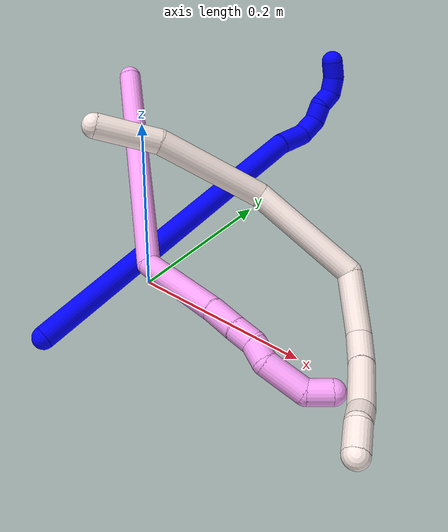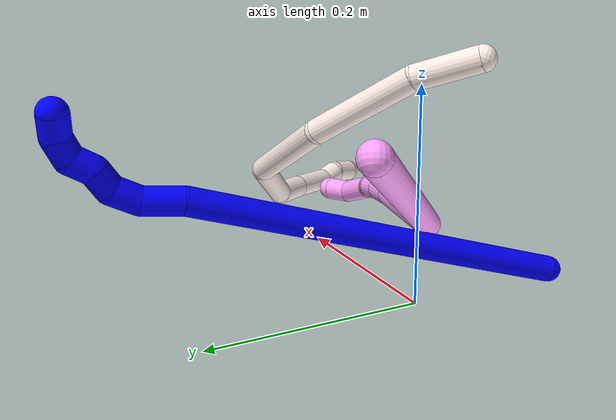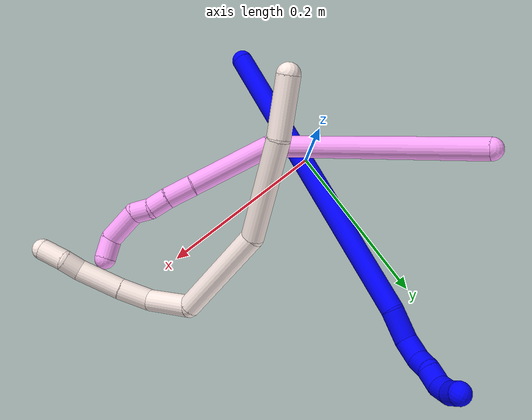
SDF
<sdf version="1.7">
 <world name="default">
  <model name="photoneo_s_sensor">
   <static>1</static>
   <pose>0 0 2 1.57079 1.57079 3.14159</pose>
   <link name="link">
    <inertial><mass>0.1</mass></inertial>
    <sensor name="sensor" type="depth">
     <update_rate>30</update_rate>
     <camera>
      <horizontal_fov>1.22</horizontal_fov>
      <image><width>1920</width><height>1200</height><format>B8G8R8</format></image>
      <clip><near>0.1</near><far>4</far></clip>
      <depth_camera><output>points</output></depth_camera>
     </camera>
     <plugin name="camera_plugin" filename="libgazebo_ros_depth_camera.so">
      <baseline>0.2</baseline>
      <alwaysOn>1</alwaysOn>
      <updateRate>0.0</updateRate>
      <cameraName>camera_ir</cameraName>
      <imageTopicName>/camera/color/image_raw</imageTopicName>
      <cameraInfoTopicName>/camera/color/camera_info</cameraInfoTopicName>
      <depthImageTopicName>/camera/depth/image_raw</depthImageTopicName>
      <depthImageCameraInfoTopicName>/camera/depth/camera_info</depthImageCameraInfoTopicName>
      <pointCloudTopicName>/camera/depth/points</pointCloudTopicName>
      <frameName>fr_optical</frameName>
      <pointCloudCutoff>0.1</pointCloudCutoff>
      <pointCloudCutoffMax>2.0</pointCloudCutoffMax>
      <distortionK1>0</distortionK1>
      <distortionK2>0</distortionK2>
      <distortionK3>0</distortionK3>
      <distortionT1>0</distortionT1>
      <distortionT2>0</distortionT2>
      <CxPrime>0</CxPrime>
      <Cx>0</Cx>
      <Cy>0</Cy>
      <focalLength>0</focalLength>
      <hackBaseline>0</hackBaseline>
     </plugin>
    </sensor>
   </link>
  </model>
  <model name="1">
   <static>0</static>
   <link name="1">
    <collision name="collision-cylinder-e_1_1_4">
     <pose>0.023298 0.153232 0.091467 -1.03265 0.129821 -0.073769</pose>
     <geometry><cylinder><radius>0.0125</radius><length>0.35994</length></cylinder></geometry>
     <surface>
      <friction><ode><mu>1.16</mu><mu2>1.16</mu2><slip1>0</slip1><slip2>0</slip2></ode></friction>
      <contact><ode><kp>1e+06</kp><kd>1</kd><max_vel>0</max_vel><min_depth>0.001</min_depth></ode></contact>
     </surface>
    </collision>
    <visual name="visual-cylinder-e_1_1_4">
     <pose>0.023298 0.153232 0.091467 -1.03265 0.129821 -0.073769</pose>
     <geometry><cylinder><radius>0.0125</radius><length>0.35994</length></cylinder></geometry>
     <material><ambient>0 0 1 1</ambient></material>
    </visual>
    <collision name="collision-cylinder-e_2_4_5">
     <pose>0.051639 0.319088 0.193872 -0.856778 0.29319 -0.134655</pose>
     <geometry><cylinder><radius>0.0125</radius><length>0.034896</length></cylinder></geometry>
     <surface>
      <friction><ode><mu>1.16</mu><mu2>1.16</mu2><slip1>0</slip1><slip2>0</slip2></ode></friction>
      <contact><ode><kp>1e+06</kp><kd>1</kd><max_vel>0</max_vel><min_depth>0.001</min_depth></ode></contact>
     </surface>
    </collision>
    <visual name="visual-cylinder-e_2_4_5">
     <pose>0.051639 0.319088 0.193872 -0.856778 0.29319 -0.134655</pose>
     <geometry><cylinder><radius>0.0125</radius><length>0.034896</length></cylinder></geometry>
     <material><ambient>0 0 1 1</ambient></material>
    </visual>
    <collision name="collision-cylinder-e_3_5_6">
     <pose>0.056255 0.342826 0.210297 -1.11231 -0.034473 0.02143</pose>
     <geometry><cylinder><radius>0.0125</radius><length>0.024803</length></cylinder></geometry>
     <surface>
      <friction><ode><mu>1.16</mu><mu2>1.16</mu2><slip1>0</slip1><slip2>0</slip2></ode></friction>
      <contact><ode><kp>1e+06</kp><kd>1</kd><max_vel>0</max_vel><min_depth>0.001</min_depth></ode></contact>
     </surface>
    </collision>
    <visual name="visual-cylinder-e_3_5_6">
     <pose>0.056255 0.342826 0.210297 -1.11231 -0.034473 0.02143</pose>
     <geometry><cylinder><radius>0.0125</radius><length>0.024803</length></cylinder></geometry>
     <material><ambient>0 0 1 1</ambient></material>
    </visual>
    <collision name="collision-cylinder-e_4_6_7">
     <pose>0.051113 0.36285 0.217079 -1.42626 -0.4823 0.419214</pose>
     <geometry><cylinder><radius>0.0125</radius><length>0.020328</length></cylinder></geometry>
     <surface>
      <friction><ode><mu>1.16</mu><mu2>1.16</mu2><slip1>0</slip1><slip2>0</slip2></ode></friction>
      <contact><ode><kp>1e+06</kp><kd>1</kd><max_vel>0</max_vel><min_depth>0.001</min_depth></ode></contact>
     </surface>
    </collision>
    <visual name="visual-cylinder-e_4_6_7">
     <pose>0.051113 0.36285 0.217079 -1.42626 -0.4823 0.419214</pose>
     <geometry><cylinder><radius>0.0125</radius><length>0.020328</length></cylinder></geometry>
     <material><ambient>0 0 1 1</ambient></material>
    </visual>
    <collision name="collision-cylinder-e_5_7_8">
     <pose>0.045478 0.380734 0.222697 -1.12203 -0.092137 0.05792</pose>
     <geometry><cylinder><radius>0.0125</radius><length>0.020003</length></cylinder></geometry>
     <surface>
      <friction><ode><mu>1.16</mu><mu2>1.16</mu2><slip1>0</slip1><slip2>0</slip2></ode></friction>
      <contact><ode><kp>1e+06</kp><kd>1</kd><max_vel>0</max_vel><min_depth>0.001</min_depth></ode></contact>
     </surface>
    </collision>
    <visual name="visual-cylinder-e_5_7_8">
     <pose>0.045478 0.380734 0.222697 -1.12203 -0.092137 0.05792</pose>
     <geometry><cylinder><radius>0.0125</radius><length>0.020003</length></cylinder></geometry>
     <material><ambient>0 0 1 1</ambient></material>
    </visual>
    <collision name="collision-cylinder-e_6_8_9">
     <pose>0.03912 0.398105 0.226719 -1.60634 -0.574336 0.59394</pose>
     <geometry><cylinder><radius>0.0125</radius><length>0.020018</length></cylinder></geometry>
     <surface>
      <friction><ode><mu>1.16</mu><mu2>1.16</mu2><slip1>0</slip1><slip2>0</slip2></ode></friction>
      <contact><ode><kp>1e+06</kp><kd>1</kd><max_vel>0</max_vel><min_depth>0.001</min_depth></ode></contact>
     </surface>
    </collision>
    <visual name="visual-cylinder-e_6_8_9">
     <pose>0.03912 0.398105 0.226719 -1.60634 -0.574336 0.59394</pose>
     <geometry><cylinder><radius>0.0125</radius><length>0.020018</length></cylinder></geometry>
     <material><ambient>0 0 1 1</ambient></material>
    </visual>
    <collision name="collision-cylinder-e_7_9_2">
     <pose>0.026614 0.412855 0.22329 -2.02862 -0.784482 1.17371</pose>
     <geometry><cylinder><radius>0.0125</radius><length>0.020013</length></cylinder></geometry>
     <surface>
      <friction><ode><mu>1.16</mu><mu2>1.16</mu2><slip1>0</slip1><slip2>0</slip2></ode></friction>
      <contact><ode><kp>1e+06</kp><kd>1</kd><max_vel>0</max_vel><min_depth>0.001</min_depth></ode></contact>
     </surface>
    </collision>
    <visual name="visual-cylinder-e_7_9_2">
     <pose>0.026614 0.412855 0.22329 -2.02862 -0.784482 1.17371</pose>
     <geometry><cylinder><radius>0.0125</radius><length>0.020013</length></cylinder></geometry>
     <material><ambient>0 0 1 1</ambient></material>
    </visual>
    <collision name="collision-sphere-2">
     <pose>0.019545 0.419208 0.22016 0 -0 0</pose>
     <geometry><sphere><radius>0.0125</radius></sphere></geometry>
     <surface>
      <friction><ode><mu>1.16</mu><mu2>1.16</mu2><slip1>0</slip1><slip2>0</slip2></ode></friction>
      <contact><ode><kp>1e+06</kp><kd>1</kd><max_vel>0</max_vel><min_depth>0.001</min_depth></ode></contact>
     </surface>
    </collision>
    <visual name="visual-sphere-2">
     <pose>0.019545 0.419208 0.22016 0 -0 0</pose>
     <geometry><sphere><radius>0.0125</radius></sphere></geometry>
     <material><ambient>0 0 1 1</ambient></material>
    </visual>
    <collision name="collision-sphere-9">
     <pose>0.033683 0.406502 0.226421 0 -0 0</pose>
     <geometry><sphere><radius>0.0125</radius></sphere></geometry>
     <surface>
      <friction><ode><mu>1.16</mu><mu2>1.16</mu2><slip1>0</slip1><slip2>0</slip2></ode></friction>
      <contact><ode><kp>1e+06</kp><kd>1</kd><max_vel>0</max_vel><min_depth>0.001</min_depth></ode></contact>
     </surface>
    </collision>
    <visual name="visual-sphere-9">
     <pose>0.033683 0.406502 0.226421 0 -0 0</pose>
     <geometry><sphere><radius>0.0125</radius></sphere></geometry>
     <material><ambient>0 0 1 1</ambient></material>
    </visual>
    <collision name="collision-sphere-4">
     <pose>0.046597 0.306465 0.182934 0 -0 0</pose>
     <geometry><sphere><radius>0.0125</radius></sphere></geometry>
     <surface>
      <friction><ode><mu>1.16</mu><mu2>1.16</mu2><slip1>0</slip1><slip2>0</slip2></ode></friction>
      <contact><ode><kp>1e+06</kp><kd>1</kd><max_vel>0</max_vel><min_depth>0.001</min_depth></ode></contact>
     </surface>
    </collision>
    <visual name="visual-sphere-4">
     <pose>0.046597 0.306465 0.182934 0 -0 0</pose>
     <geometry><sphere><radius>0.0125</radius></sphere></geometry>
     <material><ambient>0 0 1 1</ambient></material>
    </visual>
    <collision name="collision-sphere-1">
     <geometry><sphere><radius>0.0125</radius></sphere></geometry>
     <surface>
      <friction><ode><mu>1.16</mu><mu2>1.16</mu2><slip1>0</slip1><slip2>0</slip2></ode></friction>
      <contact><ode><kp>1e+06</kp><kd>1</kd><max_vel>0</max_vel><min_depth>0.001</min_depth></ode></contact>
     </surface>
    </collision>
    <visual name="visual-sphere-1">
     <geometry><sphere><radius>0.0125</radius></sphere></geometry>
     <material><ambient>0 0 1 1</ambient></material>
    </visual>
    <collision name="collision-sphere-8">
     <pose>0.044558 0.389707 0.227018 0 -0 0</pose>
     <geometry><sphere><radius>0.0125</radius></sphere></geometry>
     <surface>
      <friction><ode><mu>1.16</mu><mu2>1.16</mu2><slip1>0</slip1><slip2>0</slip2></ode></friction>
      <contact><ode><kp>1e+06</kp><kd>1</kd><max_vel>0</max_vel><min_depth>0.001</min_depth></ode></contact>
     </surface>
    </collision>
    <visual name="visual-sphere-8">
     <pose>0.044558 0.389707 0.227018 0 -0 0</pose>
     <geometry><sphere><radius>0.0125</radius></sphere></geometry>
     <material><ambient>0 0 1 1</ambient></material>
    </visual>
    <collision name="collision-sphere-5">
     <pose>0.056682 0.331712 0.204811 0 -0 0</pose>
     <geometry><sphere><radius>0.0125</radius></sphere></geometry>
     <surface>
      <friction><ode><mu>1.16</mu><mu2>1.16</mu2><slip1>0</slip1><slip2>0</slip2></ode></friction>
      <contact><ode><kp>1e+06</kp><kd>1</kd><max_vel>0</max_vel><min_depth>0.001</min_depth></ode></contact>
     </surface>
    </collision>
    <visual name="visual-sphere-5">
     <pose>0.056682 0.331712 0.204811 0 -0 0</pose>
     <geometry><sphere><radius>0.0125</radius></sphere></geometry>
     <material><ambient>0 0 1 1</ambient></material>
    </visual>
    <collision name="collision-sphere-6">
     <pose>0.055827 0.35394 0.215782 0 -0 0</pose>
     <geometry><sphere><radius>0.0125</radius></sphere></geometry>
     <surface>
      <friction><ode><mu>1.16</mu><mu2>1.16</mu2><slip1>0</slip1><slip2>0</slip2></ode></friction>
      <contact><ode><kp>1e+06</kp><kd>1</kd><max_vel>0</max_vel><min_depth>0.001</min_depth></ode></contact>
     </surface>
    </collision>
    <visual name="visual-sphere-6">
     <pose>0.055827 0.35394 0.215782 0 -0 0</pose>
     <geometry><sphere><radius>0.0125</radius></sphere></geometry>
     <material><ambient>0 0 1 1</ambient></material>
    </visual>
    <collision name="collision-sphere-7">
     <pose>0.046398 0.371761 0.218376 0 -0 0</pose>
     <geometry><sphere><radius>0.0125</radius></sphere></geometry>
     <surface>
      <friction><ode><mu>1.16</mu><mu2>1.16</mu2><slip1>0</slip1><slip2>0</slip2></ode></friction>
      <contact><ode><kp>1e+06</kp><kd>1</kd><max_vel>0</max_vel><min_depth>0.001</min_depth></ode></contact>
     </surface>
    </collision>
    <visual name="visual-sphere-7">
     <pose>0.046398 0.371761 0.218376 0 -0 0</pose>
     <geometry><sphere><radius>0.0125</radius></sphere></geometry>
     <material><ambient>0 0 1 1</ambient></material>
    </visual>
    <inertial>
     <pose>0.029695 0.212031 0.125557 0 -0 0</pose>
     <mass>0.5</mass>
     <inertia>
      <ixx>0.003586</ixx>
      <ixy>0</ixy>
      <ixz>0</ixz>
      <iyy>0.001781</iyy>
      <iyz>0</iyz>
      <izz>-0.003817</izz>
     </inertia>
    </inertial>
   </link>
   <pose>-0.01263 -0.145416 0.011445 1.7963 0.994048 2.20487</pose>
  </model>
  <model name="4">
   <static>0</static>
   <link name="4">
    <collision name="collision-cylinder-e_1_1_4">
     <pose>0.093054 -0.086109 0.011975 1.43261 0.819368 0.722869</pose>
     <geometry><cylinder><radius>0.0125</radius><length>0.254693</length></cylinder></geometry>
     <surface>
      <friction><ode><mu>1.16</mu><mu2>1.16</mu2><slip1>0</slip1><slip2>0</slip2></ode></friction>
      <contact><ode><kp>1e+06</kp><kd>1</kd><max_vel>0</max_vel><min_depth>0.001</min_depth></ode></contact>
     </surface>
    </collision>
    <visual name="visual-cylinder-e_1_1_4">
     <pose>0.093054 -0.086109 0.011975 1.43261 0.819368 0.722869</pose>
     <geometry><cylinder><radius>0.0125</radius><length>0.254693</length></cylinder></geometry>
     <material><ambient>1 0.65098 0.996078 1</ambient></material>
    </visual>
    <collision name="collision-cylinder-e_2_4_5">
     <pose>0.227682 -0.177583 0.050871 0.196751 0.987242 0.106105</pose>
     <geometry><cylinder><radius>0.0125</radius><length>0.099638</length></cylinder></geometry>
     <surface>
      <friction><ode><mu>1.16</mu><mu2>1.16</mu2><slip1>0</slip1><slip2>0</slip2></ode></friction>
      <contact><ode><kp>1e+06</kp><kd>1</kd><max_vel>0</max_vel><min_depth>0.001</min_depth></ode></contact>
     </surface>
    </collision>
    <visual name="visual-cylinder-e_2_4_5">
     <pose>0.227682 -0.177583 0.050871 0.196751 0.987242 0.106105</pose>
     <geometry><cylinder><radius>0.0125</radius><length>0.099638</length></cylinder></geometry>
     <material><ambient>1 0.65098 0.996078 1</ambient></material>
    </visual>
    <collision name="collision-cylinder-e_3_5_6">
     <pose>0.283322 -0.185376 0.085144 0.318862 1.06758 0.189497</pose>
     <geometry><cylinder><radius>0.0125</radius><length>0.032111</length></cylinder></geometry>
     <surface>
      <friction><ode><mu>1.16</mu><mu2>1.16</mu2><slip1>0</slip1><slip2>0</slip2></ode></friction>
      <contact><ode><kp>1e+06</kp><kd>1</kd><max_vel>0</max_vel><min_depth>0.001</min_depth></ode></contact>
     </surface>
    </collision>
    <visual name="visual-cylinder-e_3_5_6">
     <pose>0.283322 -0.185376 0.085144 0.318862 1.06758 0.189497</pose>
     <geometry><cylinder><radius>0.0125</radius><length>0.032111</length></cylinder></geometry>
     <material><ambient>1 0.65098 0.996078 1</ambient></material>
    </visual>
    <collision name="collision-cylinder-e_4_6_7">
     <pose>0.307924 -0.188821 0.097094 0.217675 1.15052 0.141468</pose>
     <geometry><cylinder><radius>0.0125</radius><length>0.023084</length></cylinder></geometry>
     <surface>
      <friction><ode><mu>1.16</mu><mu2>1.16</mu2><slip1>0</slip1><slip2>0</slip2></ode></friction>
      <contact><ode><kp>1e+06</kp><kd>1</kd><max_vel>0</max_vel><min_depth>0.001</min_depth></ode></contact>
     </surface>
    </collision>
    <visual name="visual-cylinder-e_4_6_7">
     <pose>0.307924 -0.188821 0.097094 0.217675 1.15052 0.141468</pose>
     <geometry><cylinder><radius>0.0125</radius><length>0.023084</length></cylinder></geometry>
     <material><ambient>1 0.65098 0.996078 1</ambient></material>
    </visual>
    <collision name="collision-cylinder-e_5_7_8">
     <pose>0.328001 -0.194488 0.104576 1.01579 1.04998 0.62373</pose>
     <geometry><cylinder><radius>0.0125</radius><length>0.021994</length></cylinder></geometry>
     <surface>
      <friction><ode><mu>1.16</mu><mu2>1.16</mu2><slip1>0</slip1><slip2>0</slip2></ode></friction>
      <contact><ode><kp>1e+06</kp><kd>1</kd><max_vel>0</max_vel><min_depth>0.001</min_depth></ode></contact>
     </surface>
    </collision>
    <visual name="visual-cylinder-e_5_7_8">
     <pose>0.328001 -0.194488 0.104576 1.01579 1.04998 0.62373</pose>
     <geometry><cylinder><radius>0.0125</radius><length>0.021994</length></cylinder></geometry>
     <material><ambient>1 0.65098 0.996078 1</ambient></material>
    </visual>
    <collision name="collision-cylinder-e_6_8_9">
     <pose>0.359156 -0.197584 0.110367 -0.491111 1.41942 -0.42409</pose>
     <geometry><cylinder><radius>0.0125</radius><length>0.043732</length></cylinder></geometry>
     <surface>
      <friction><ode><mu>1.16</mu><mu2>1.16</mu2><slip1>0</slip1><slip2>0</slip2></ode></friction>
      <contact><ode><kp>1e+06</kp><kd>1</kd><max_vel>0</max_vel><min_depth>0.001</min_depth></ode></contact>
     </surface>
    </collision>
    <visual name="visual-cylinder-e_6_8_9">
     <pose>0.359156 -0.197584 0.110367 -0.491111 1.41942 -0.42409</pose>
     <geometry><cylinder><radius>0.0125</radius><length>0.043732</length></cylinder></geometry>
     <material><ambient>1 0.65098 0.996078 1</ambient></material>
    </visual>
    <collision name="collision-cylinder-e_7_9_2">
     <pose>0.389805 -0.188259 0.116615 -1.16477 0.8183 -0.556342</pose>
     <geometry><cylinder><radius>0.0125</radius><length>0.024748</length></cylinder></geometry>
     <surface>
      <friction><ode><mu>1.16</mu><mu2>1.16</mu2><slip1>0</slip1><slip2>0</slip2></ode></friction>
      <contact><ode><kp>1e+06</kp><kd>1</kd><max_vel>0</max_vel><min_depth>0.001</min_depth></ode></contact>
     </surface>
    </collision>
    <visual name="visual-cylinder-e_7_9_2">
     <pose>0.389805 -0.188259 0.116615 -1.16477 0.8183 -0.556342</pose>
     <geometry><cylinder><radius>0.0125</radius><length>0.024748</length></cylinder></geometry>
     <material><ambient>1 0.65098 0.996078 1</ambient></material>
    </visual>
    <collision name="collision-sphere-2">
     <pose>0.398838 -0.180489 0.119955 0 -0 0</pose>
     <geometry><sphere><radius>0.0125</radius></sphere></geometry>
     <surface>
      <friction><ode><mu>1.16</mu><mu2>1.16</mu2><slip1>0</slip1><slip2>0</slip2></ode></friction>
      <contact><ode><kp>1e+06</kp><kd>1</kd><max_vel>0</max_vel><min_depth>0.001</min_depth></ode></contact>
     </surface>
    </collision>
    <visual name="visual-sphere-2">
     <pose>0.398838 -0.180489 0.119955 0 -0 0</pose>
     <geometry><sphere><radius>0.0125</radius></sphere></geometry>
     <material><ambient>1 0.65098 0.996078 1</ambient></material>
    </visual>
    <collision name="collision-sphere-9">
     <pose>0.380772 -0.196029 0.113275 0 -0 0</pose>
     <geometry><sphere><radius>0.0125</radius></sphere></geometry>
     <surface>
      <friction><ode><mu>1.16</mu><mu2>1.16</mu2><slip1>0</slip1><slip2>0</slip2></ode></friction>
      <contact><ode><kp>1e+06</kp><kd>1</kd><max_vel>0</max_vel><min_depth>0.001</min_depth></ode></contact>
     </surface>
    </collision>
    <visual name="visual-sphere-9">
     <pose>0.380772 -0.196029 0.113275 0 -0 0</pose>
     <geometry><sphere><radius>0.0125</radius></sphere></geometry>
     <material><ambient>1 0.65098 0.996078 1</ambient></material>
    </visual>
    <collision name="collision-sphere-4">
     <pose>0.186108 -0.172217 0.023951 0 -0 0</pose>
     <geometry><sphere><radius>0.0125</radius></sphere></geometry>
     <surface>
      <friction><ode><mu>1.16</mu><mu2>1.16</mu2><slip1>0</slip1><slip2>0</slip2></ode></friction>
      <contact><ode><kp>1e+06</kp><kd>1</kd><max_vel>0</max_vel><min_depth>0.001</min_depth></ode></contact>
     </surface>
    </collision>
    <visual name="visual-sphere-4">
     <pose>0.186108 -0.172217 0.023951 0 -0 0</pose>
     <geometry><sphere><radius>0.0125</radius></sphere></geometry>
     <material><ambient>1 0.65098 0.996078 1</ambient></material>
    </visual>
    <collision name="collision-sphere-1">
     <geometry><sphere><radius>0.0125</radius></sphere></geometry>
     <surface>
      <friction><ode><mu>1.16</mu><mu2>1.16</mu2><slip1>0</slip1><slip2>0</slip2></ode></friction>
      <contact><ode><kp>1e+06</kp><kd>1</kd><max_vel>0</max_vel><min_depth>0.001</min_depth></ode></contact>
     </surface>
    </collision>
    <visual name="visual-sphere-1">
     <geometry><sphere><radius>0.0125</radius></sphere></geometry>
     <material><ambient>1 0.65098 0.996078 1</ambient></material>
    </visual>
    <collision name="collision-sphere-8">
     <pose>0.33754 -0.199139 0.107459 0 -0 0</pose>
     <geometry><sphere><radius>0.0125</radius></sphere></geometry>
     <surface>
      <friction><ode><mu>1.16</mu><mu2>1.16</mu2><slip1>0</slip1><slip2>0</slip2></ode></friction>
      <contact><ode><kp>1e+06</kp><kd>1</kd><max_vel>0</max_vel><min_depth>0.001</min_depth></ode></contact>
     </surface>
    </collision>
    <visual name="visual-sphere-8">
     <pose>0.33754 -0.199139 0.107459 0 -0 0</pose>
     <geometry><sphere><radius>0.0125</radius></sphere></geometry>
     <material><ambient>1 0.65098 0.996078 1</ambient></material>
    </visual>
    <collision name="collision-sphere-5">
     <pose>0.269257 -0.182949 0.077792 0 -0 0</pose>
     <geometry><sphere><radius>0.0125</radius></sphere></geometry>
     <surface>
      <friction><ode><mu>1.16</mu><mu2>1.16</mu2><slip1>0</slip1><slip2>0</slip2></ode></friction>
      <contact><ode><kp>1e+06</kp><kd>1</kd><max_vel>0</max_vel><min_depth>0.001</min_depth></ode></contact>
     </surface>
    </collision>
    <visual name="visual-sphere-5">
     <pose>0.269257 -0.182949 0.077792 0 -0 0</pose>
     <geometry><sphere><radius>0.0125</radius></sphere></geometry>
     <material><ambient>1 0.65098 0.996078 1</ambient></material>
    </visual>
    <collision name="collision-sphere-6">
     <pose>0.297387 -0.187804 0.092496 0 -0 0</pose>
     <geometry><sphere><radius>0.0125</radius></sphere></geometry>
     <surface>
      <friction><ode><mu>1.16</mu><mu2>1.16</mu2><slip1>0</slip1><slip2>0</slip2></ode></friction>
      <contact><ode><kp>1e+06</kp><kd>1</kd><max_vel>0</max_vel><min_depth>0.001</min_depth></ode></contact>
     </surface>
    </collision>
    <visual name="visual-sphere-6">
     <pose>0.297387 -0.187804 0.092496 0 -0 0</pose>
     <geometry><sphere><radius>0.0125</radius></sphere></geometry>
     <material><ambient>1 0.65098 0.996078 1</ambient></material>
    </visual>
    <collision name="collision-sphere-7">
     <pose>0.318462 -0.189838 0.101692 0 -0 0</pose>
     <geometry><sphere><radius>0.0125</radius></sphere></geometry>
     <surface>
      <friction><ode><mu>1.16</mu><mu2>1.16</mu2><slip1>0</slip1><slip2>0</slip2></ode></friction>
      <contact><ode><kp>1e+06</kp><kd>1</kd><max_vel>0</max_vel><min_depth>0.001</min_depth></ode></contact>
     </surface>
    </collision>
    <visual name="visual-sphere-7">
     <pose>0.318462 -0.189838 0.101692 0 -0 0</pose>
     <geometry><sphere><radius>0.0125</radius></sphere></geometry>
     <material><ambient>1 0.65098 0.996078 1</ambient></material>
    </visual>
    <inertial>
     <pose>0.190319 -0.135028 0.046214 0 -0 0</pose>
     <mass>0.5</mass>
     <inertia>
      <ixx>0.001425</ixx>
      <ixy>0</ixy>
      <ixz>0</ixz>
      <iyy>0.001527</iyy>
      <iyz>0</iyz>
      <izz>-0.000146</izz>
     </inertia>
    </inertial>
   </link>
   <pose>-0.13107 0.12146 0.177429 0.311577 0.505118 0.09946</pose>
  </model>
  <model name="11">
   <static>0</static>
   <link name="11">
    <collision name="collision-cylinder-e_1_1_4">
     <pose>0.026105 0.011514 -0.014466 -2.46932 0.954567 -1.95327</pose>
     <geometry><cylinder><radius>0.0125</radius><length>0.063978</length></cylinder></geometry>
     <surface>
      <friction><ode><mu>1.16</mu><mu2>1.16</mu2><slip1>0</slip1><slip2>0</slip2></ode></friction>
      <contact><ode><kp>1e+06</kp><kd>1</kd><max_vel>0</max_vel><min_depth>0.001</min_depth></ode></contact>
     </surface>
    </collision>
    <visual name="visual-cylinder-e_1_1_4">
     <pose>0.026105 0.011514 -0.014466 -2.46932 0.954567 -1.95327</pose>
     <geometry><cylinder><radius>0.0125</radius><length>0.063978</length></cylinder></geometry>
     <material><ambient>1 0.933333 0.909804 1</ambient></material>
    </visual>
    <collision name="collision-cylinder-e_2_4_5">
     <pose>0.099097 0.030681 -0.06013 -2.90105 0.970118 -2.69078</pose>
     <geometry><cylinder><radius>0.0125</radius><length>0.113671</length></cylinder></geometry>
     <surface>
      <friction><ode><mu>1.16</mu><mu2>1.16</mu2><slip1>0</slip1><slip2>0</slip2></ode></friction>
      <contact><ode><kp>1e+06</kp><kd>1</kd><max_vel>0</max_vel><min_depth>0.001</min_depth></ode></contact>
     </surface>
    </collision>
    <visual name="visual-cylinder-e_2_4_5">
     <pose>0.099097 0.030681 -0.06013 -2.90105 0.970118 -2.69078</pose>
     <geometry><cylinder><radius>0.0125</radius><length>0.113671</length></cylinder></geometry>
     <material><ambient>1 0.933333 0.909804 1</ambient></material>
    </visual>
    <collision name="collision-cylinder-e_3_5_6">
     <pose>0.200434 0.026846 -0.109218 2.57077 1.19856 2.33015</pose>
     <geometry><cylinder><radius>0.0125</radius><length>0.116909</length></cylinder></geometry>
     <surface>
      <friction><ode><mu>1.16</mu><mu2>1.16</mu2><slip1>0</slip1><slip2>0</slip2></ode></friction>
      <contact><ode><kp>1e+06</kp><kd>1</kd><max_vel>0</max_vel><min_depth>0.001</min_depth></ode></contact>
     </surface>
    </collision>
    <visual name="visual-cylinder-e_3_5_6">
     <pose>0.200434 0.026846 -0.109218 2.57077 1.19856 2.33015</pose>
     <geometry><cylinder><radius>0.0125</radius><length>0.116909</length></cylinder></geometry>
     <material><ambient>1 0.933333 0.909804 1</ambient></material>
    </visual>
    <collision name="collision-cylinder-e_4_6_7">
     <pose>0.272176 -0.010606 -0.131264 1.72954 0.581665 0.675216</pose>
     <geometry><cylinder><radius>0.0125</radius><length>0.062942</length></cylinder></geometry>
     <surface>
      <friction><ode><mu>1.16</mu><mu2>1.16</mu2><slip1>0</slip1><slip2>0</slip2></ode></friction>
      <contact><ode><kp>1e+06</kp><kd>1</kd><max_vel>0</max_vel><min_depth>0.001</min_depth></ode></contact>
     </surface>
    </collision>
    <visual name="visual-cylinder-e_4_6_7">
     <pose>0.272176 -0.010606 -0.131264 1.72954 0.581665 0.675216</pose>
     <geometry><cylinder><radius>0.0125</radius><length>0.062942</length></cylinder></geometry>
     <material><ambient>1 0.933333 0.909804 1</ambient></material>
    </visual>
    <collision name="collision-cylinder-e_5_7_8">
     <pose>0.297052 -0.050821 -0.125541 0.9646 0.412314 0.218104</pose>
     <geometry><cylinder><radius>0.0125</radius><length>0.037853</length></cylinder></geometry>
     <surface>
      <friction><ode><mu>1.16</mu><mu2>1.16</mu2><slip1>0</slip1><slip2>0</slip2></ode></friction>
      <contact><ode><kp>1e+06</kp><kd>1</kd><max_vel>0</max_vel><min_depth>0.001</min_depth></ode></contact>
     </surface>
    </collision>
    <visual name="visual-cylinder-e_5_7_8">
     <pose>0.297052 -0.050821 -0.125541 0.9646 0.412314 0.218104</pose>
     <geometry><cylinder><radius>0.0125</radius><length>0.037853</length></cylinder></geometry>
     <material><ambient>1 0.933333 0.909804 1</ambient></material>
    </visual>
    <collision name="collision-cylinder-e_6_8_9">
     <pose>0.313616 -0.086088 -0.102156 0.999617 0.345076 0.189751</pose>
     <geometry><cylinder><radius>0.0125</radius><length>0.053091</length></cylinder></geometry>
     <surface>
      <friction><ode><mu>1.16</mu><mu2>1.16</mu2><slip1>0</slip1><slip2>0</slip2></ode></friction>
      <contact><ode><kp>1e+06</kp><kd>1</kd><max_vel>0</max_vel><min_depth>0.001</min_depth></ode></contact>
     </surface>
    </collision>
    <visual name="visual-cylinder-e_6_8_9">
     <pose>0.313616 -0.086088 -0.102156 0.999617 0.345076 0.189751</pose>
     <geometry><cylinder><radius>0.0125</radius><length>0.053091</length></cylinder></geometry>
     <material><ambient>1 0.933333 0.909804 1</ambient></material>
    </visual>
    <collision name="collision-cylinder-e_7_9_10">
     <pose>0.324254 -0.114041 -0.080277 0.691891 0.151345 0.054642</pose>
     <geometry><cylinder><radius>0.0125</radius><length>0.021999</length></cylinder></geometry>
     <surface>
      <friction><ode><mu>1.16</mu><mu2>1.16</mu2><slip1>0</slip1><slip2>0</slip2></ode></friction>
      <contact><ode><kp>1e+06</kp><kd>1</kd><max_vel>0</max_vel><min_depth>0.001</min_depth></ode></contact>
     </surface>
    </collision>
    <visual name="visual-cylinder-e_7_9_10">
     <pose>0.324254 -0.114041 -0.080277 0.691891 0.151345 0.054642</pose>
     <geometry><cylinder><radius>0.0125</radius><length>0.021999</length></cylinder></geometry>
     <material><ambient>1 0.933333 0.909804 1</ambient></material>
    </visual>
    <collision name="collision-cylinder-e_8_10_2">
     <pose>0.330578 -0.133617 -0.065831 1.12291 0.321224 0.203097</pose>
     <geometry><cylinder><radius>0.0125</radius><length>0.029556</length></cylinder></geometry>
     <surface>
      <friction><ode><mu>1.16</mu><mu2>1.16</mu2><slip1>0</slip1><slip2>0</slip2></ode></friction>
      <contact><ode><kp>1e+06</kp><kd>1</kd><max_vel>0</max_vel><min_depth>0.001</min_depth></ode></contact>
     </surface>
    </collision>
    <visual name="visual-cylinder-e_8_10_2">
     <pose>0.330578 -0.133617 -0.065831 1.12291 0.321224 0.203097</pose>
     <geometry><cylinder><radius>0.0125</radius><length>0.029556</length></cylinder></geometry>
     <material><ambient>1 0.933333 0.909804 1</ambient></material>
    </visual>
    <collision name="collision-sphere-2">
     <pose>0.335244 -0.146256 -0.059759 0 -0 0</pose>
     <geometry><sphere><radius>0.0125</radius></sphere></geometry>
     <surface>
      <friction><ode><mu>1.16</mu><mu2>1.16</mu2><slip1>0</slip1><slip2>0</slip2></ode></friction>
      <contact><ode><kp>1e+06</kp><kd>1</kd><max_vel>0</max_vel><min_depth>0.001</min_depth></ode></contact>
     </surface>
    </collision>
    <visual name="visual-sphere-2">
     <pose>0.335244 -0.146256 -0.059759 0 -0 0</pose>
     <geometry><sphere><radius>0.0125</radius></sphere></geometry>
     <material><ambient>1 0.933333 0.909804 1</ambient></material>
    </visual>
    <collision name="collision-sphere-10">
     <pose>0.325912 -0.120978 -0.071904 0 -0 0</pose>
     <geometry><sphere><radius>0.0125</radius></sphere></geometry>
     <surface>
      <friction><ode><mu>1.16</mu><mu2>1.16</mu2><slip1>0</slip1><slip2>0</slip2></ode></friction>
      <contact><ode><kp>1e+06</kp><kd>1</kd><max_vel>0</max_vel><min_depth>0.001</min_depth></ode></contact>
     </surface>
    </collision>
    <visual name="visual-sphere-10">
     <pose>0.325912 -0.120978 -0.071904 0 -0 0</pose>
     <geometry><sphere><radius>0.0125</radius></sphere></geometry>
     <material><ambient>1 0.933333 0.909804 1</ambient></material>
    </visual>
    <collision name="collision-sphere-9">
     <pose>0.322595 -0.107103 -0.08865 0 -0 0</pose>
     <geometry><sphere><radius>0.0125</radius></sphere></geometry>
     <surface>
      <friction><ode><mu>1.16</mu><mu2>1.16</mu2><slip1>0</slip1><slip2>0</slip2></ode></friction>
      <contact><ode><kp>1e+06</kp><kd>1</kd><max_vel>0</max_vel><min_depth>0.001</min_depth></ode></contact>
     </surface>
    </collision>
    <visual name="visual-sphere-9">
     <pose>0.322595 -0.107103 -0.08865 0 -0 0</pose>
     <geometry><sphere><radius>0.0125</radius></sphere></geometry>
     <material><ambient>1 0.933333 0.909804 1</ambient></material>
    </visual>
    <collision name="collision-sphere-4">
     <pose>0.05221 0.023028 -0.028931 0 -0 0</pose>
     <geometry><sphere><radius>0.0125</radius></sphere></geometry>
     <surface>
      <friction><ode><mu>1.16</mu><mu2>1.16</mu2><slip1>0</slip1><slip2>0</slip2></ode></friction>
      <contact><ode><kp>1e+06</kp><kd>1</kd><max_vel>0</max_vel><min_depth>0.001</min_depth></ode></contact>
     </surface>
    </collision>
    <visual name="visual-sphere-4">
     <pose>0.05221 0.023028 -0.028931 0 -0 0</pose>
     <geometry><sphere><radius>0.0125</radius></sphere></geometry>
     <material><ambient>1 0.933333 0.909804 1</ambient></material>
    </visual>
    <collision name="collision-sphere-1">
     <geometry><sphere><radius>0.0125</radius></sphere></geometry>
     <surface>
      <friction><ode><mu>1.16</mu><mu2>1.16</mu2><slip1>0</slip1><slip2>0</slip2></ode></friction>
      <contact><ode><kp>1e+06</kp><kd>1</kd><max_vel>0</max_vel><min_depth>0.001</min_depth></ode></contact>
     </surface>
    </collision>
    <visual name="visual-sphere-1">
     <geometry><sphere><radius>0.0125</radius></sphere></geometry>
     <material><ambient>1 0.933333 0.909804 1</ambient></material>
    </visual>
    <collision name="collision-sphere-8">
     <pose>0.304636 -0.065072 -0.115661 0 -0 0</pose>
     <geometry><sphere><radius>0.0125</radius></sphere></geometry>
     <surface>
      <friction><ode><mu>1.16</mu><mu2>1.16</mu2><slip1>0</slip1><slip2>0</slip2></ode></friction>
      <contact><ode><kp>1e+06</kp><kd>1</kd><max_vel>0</max_vel><min_depth>0.001</min_depth></ode></contact>
     </surface>
    </collision>
    <visual name="visual-sphere-8">
     <pose>0.304636 -0.065072 -0.115661 0 -0 0</pose>
     <geometry><sphere><radius>0.0125</radius></sphere></geometry>
     <material><ambient>1 0.933333 0.909804 1</ambient></material>
    </visual>
    <collision name="collision-sphere-5">
     <pose>0.145983 0.038334 -0.091328 0 -0 0</pose>
     <geometry><sphere><radius>0.0125</radius></sphere></geometry>
     <surface>
      <friction><ode><mu>1.16</mu><mu2>1.16</mu2><slip1>0</slip1><slip2>0</slip2></ode></friction>
      <contact><ode><kp>1e+06</kp><kd>1</kd><max_vel>0</max_vel><min_depth>0.001</min_depth></ode></contact>
     </surface>
    </collision>
    <visual name="visual-sphere-5">
     <pose>0.145983 0.038334 -0.091328 0 -0 0</pose>
     <geometry><sphere><radius>0.0125</radius></sphere></geometry>
     <material><ambient>1 0.933333 0.909804 1</ambient></material>
    </visual>
    <collision name="collision-sphere-6">
     <pose>0.254886 0.015359 -0.127107 0 -0 0</pose>
     <geometry><sphere><radius>0.0125</radius></sphere></geometry>
     <surface>
      <friction><ode><mu>1.16</mu><mu2>1.16</mu2><slip1>0</slip1><slip2>0</slip2></ode></friction>
      <contact><ode><kp>1e+06</kp><kd>1</kd><max_vel>0</max_vel><min_depth>0.001</min_depth></ode></contact>
     </surface>
    </collision>
    <visual name="visual-sphere-6">
     <pose>0.254886 0.015359 -0.127107 0 -0 0</pose>
     <geometry><sphere><radius>0.0125</radius></sphere></geometry>
     <material><ambient>1 0.933333 0.909804 1</ambient></material>
    </visual>
    <collision name="collision-sphere-7">
     <pose>0.289467 -0.036571 -0.13542 0 -0 0</pose>
     <geometry><sphere><radius>0.0125</radius></sphere></geometry>
     <surface>
      <friction><ode><mu>1.16</mu><mu2>1.16</mu2><slip1>0</slip1><slip2>0</slip2></ode></friction>
      <contact><ode><kp>1e+06</kp><kd>1</kd><max_vel>0</max_vel><min_depth>0.001</min_depth></ode></contact>
     </surface>
    </collision>
    <visual name="visual-sphere-7">
     <pose>0.289467 -0.036571 -0.13542 0 -0 0</pose>
     <geometry><sphere><radius>0.0125</radius></sphere></geometry>
     <material><ambient>1 0.933333 0.909804 1</ambient></material>
    </visual>
    <inertial>
     <pose>0.196594 -0.012514 -0.085357 0 -0 0</pose>
     <mass>0.5</mass>
     <inertia>
      <ixx>-3.1e-05</ixx>
      <ixy>0</ixy>
      <ixz>0</ixz>
      <iyy>0.000288</iyy>
      <iyz>0</iyz>
      <izz>-0.000238</izz>
     </inertia>
    </inertial>
   </link>
   <pose>-0.005643 -0.058478 0.219005 0.572949 0.15112 0.15052</pose>
  </model>
 </world>
</sdf>
